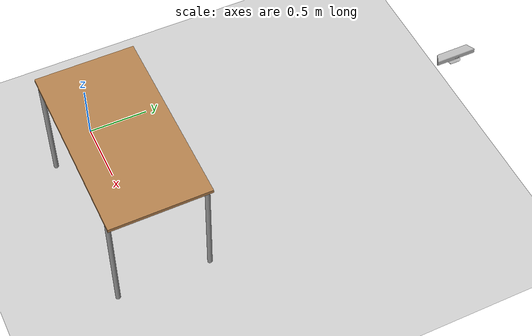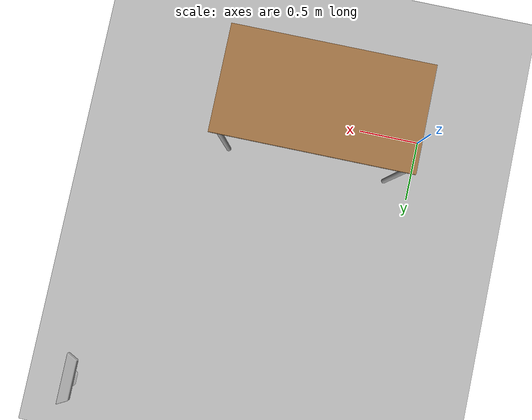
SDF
<?xml version="1.0" ?>
<sdf version="1.4">
  <world name="default">
    <include>
      <uri>model://ground_plane</uri>
    </include>
    <include>
      <uri>model://sun</uri>
    </include>
    <include>
      <uri>model://table</uri>
      <name>table</name>
      <pose>0.9 0.0 0.0 0 0 0</pose>
      <static>1</static>
    </include>
    <include>
      <uri>model://kinect</uri>
      <name>kinect</name>
      <pose>2.0 2.0 2.0 0.0 0.0 0.0</pose>
      <static>0</static>
    </include>
    <gravity>0 0 0</gravity>
  </world>
</sdf>

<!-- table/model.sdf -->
<sdf version="1.5">
  <model name="table">
    <static>true</static>
    <link name="link">
      <collision name="surface">
        <pose>0 0 1.0 0 0 0</pose>
        <geometry>
          <box>
            <size>1.5 0.8 0.03</size>
          </box>
        </geometry>
        <surface>
          <friction>
            <ode>
              <mu>0.6</mu>
              <mu2>0.6</mu2>
            </ode>
          </friction>
        </surface>
      </collision>
      <visual name="visual1">
        <pose>0 0 1.0 0 0 0</pose>
        <geometry>
          <box>
            <size>1.5 0.8 0.03</size>
          </box>
        </geometry>
        <material>
          <script>
            <uri>model://media/materials/scripts/gazebo.material</uri>
            <name>Gazebo/Wood</name>
          </script>
        </material>
      </visual>
      <collision name="front_left_leg">
        <pose>0.68 0.38 0.5 0 0 0</pose>
        <geometry>
          <cylinder>
            <radius>0.02</radius>
            <length>1.0</length>
          </cylinder>
        </geometry>
      </collision>
      <visual name="front_left_leg">
        <pose>0.68 0.38 0.5 0 0 0</pose>
        <geometry>
          <cylinder>
            <radius>0.02</radius>
            <length>1.0</length>
          </cylinder>
        </geometry>
        <material>
          <script>
            <uri>model://media/materials/scripts/gazebo.material</uri>
            <name>Gazebo/Grey</name>
          </script>
        </material>
      </visual>
      <collision name="front_right_leg">
        <pose>0.68 -0.38 0.5 0 0 0</pose>
        <geometry>
          <cylinder>
            <radius>0.02</radius>
            <length>1.0</length>
          </cylinder>
        </geometry>
      </collision>
      <visual name="front_right_leg">
        <pose>0.68 -0.38 0.5 0 0 0</pose>
        <geometry>
          <cylinder>
            <radius>0.02</radius>
            <length>1.0</length>
          </cylinder>
        </geometry>
        <material>
          <script>
            <uri>model://media/materials/scripts/gazebo.material</uri>
            <name>Gazebo/Grey</name>
          </script>
        </material>
      </visual>
      <collision name="back_right_leg">
        <pose>-0.68 -0.38 0.5 0 0 0</pose>
        <geometry>
          <cylinder>
            <radius>0.02</radius>
            <length>1.0</length>
          </cylinder>
        </geometry>
      </collision>
      <visual name="back_right_leg">
        <pose>-0.68 -0.38 0.5 0 0 0</pose>
        <geometry>
          <cylinder>
            <radius>0.02</radius>
            <length>1.0</length>
          </cylinder>
        </geometry>
        <material>
          <script>
            <uri>model://media/materials/scripts/gazebo.material</uri>
            <name>Gazebo/Grey</name>
          </script>
        </material>
      </visual>
      <collision name="back_left_leg">
        <pose>-0.68 0.38 0.5 0 0 0</pose>
        <geometry>
          <cylinder>
            <radius>0.02</radius>
            <length>1.0</length>
          </cylinder>
        </geometry>
      </collision>
      <visual name="back_left_leg">
        <pose>-0.68 0.38 0.5 0 0 0</pose>
        <geometry>
          <cylinder>
            <radius>0.02</radius>
            <length>1.0</length>
          </cylinder>
        </geometry>
        <material>
          <script>
            <uri>model://media/materials/scripts/gazebo.material</uri>
            <name>Gazebo/Grey</name>
          </script>
        </material>
      </visual>
    </link>
  </model>
</sdf>

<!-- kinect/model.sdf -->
<sdf version="1.5">
  <model name="kinect">
    <static>0</static>
    <pose>0 0 0.036 0 0 0</pose>
    <link name="link">
      <inertial>
        <mass>0.1</mass>
      </inertial>
      <collision name="collision">
        <geometry>
          <box>
            <size>0.073000 0.276000 0.072000</size>
          </box>
        </geometry>
      </collision>
      <visual name="visual">
        <geometry>
          <mesh>
            <uri>model://kinect/meshes/kinect.dae</uri>
          </mesh>
        </geometry>
      </visual>
      <sensor name="panda_camera" type="depth">
        <update_rate>20</update_rate>
        <camera>
          <horizontal_fov>1.047198</horizontal_fov>
          <image>
            <width>640</width>
            <height>480</height>
            <format>R8G8B8</format>
          </image>
          <clip>
            <near>0.05</near>
            <far>3</far>
          </clip>
        </camera>
	<plugin name="camera_plugin" filename="libgazebo_ros_openni_kinect.so">
          <baseline>0.2</baseline>
          <alwaysOn>true</alwaysOn>
          <updateRate>0.0</updateRate>
          <cameraName>camera_ir</cameraName>
          <imageTopicName>/camera/color/image_raw</imageTopicName>
          <cameraInfoTopicName>/camera/color/camera_info</cameraInfoTopicName>
          <depthImageTopicName>/camera/depth/image_raw</depthImageTopicName>
          <depthImageCameraInfoTopicName>/camera/depth/camera_info</depthImageCameraInfoTopicName>
          <pointCloudTopicName>/panda_camera/depth/points</pointCloudTopicName>
          <frameName>camera_link</frameName>
          <pointCloudCutoff>0.5</pointCloudCutoff>
          <pointCloudCutoffMax>3.0</pointCloudCutoffMax>
          <distortionK1>0</distortionK1>
          <distortionK2>0</distortionK2>
          <distortionK3>0</distortionK3>
          <distortionT1>0</distortionT1>
          <distortionT2>0</distortionT2>
          <CxPrime>0</CxPrime>
          <Cx>0</Cx>
          <Cy>0</Cy>
          <focalLength>0</focalLength>
          <hackBaseline>0</hackBaseline>
         </plugin>
      </sensor>
    </link>
  </model>
</sdf>
